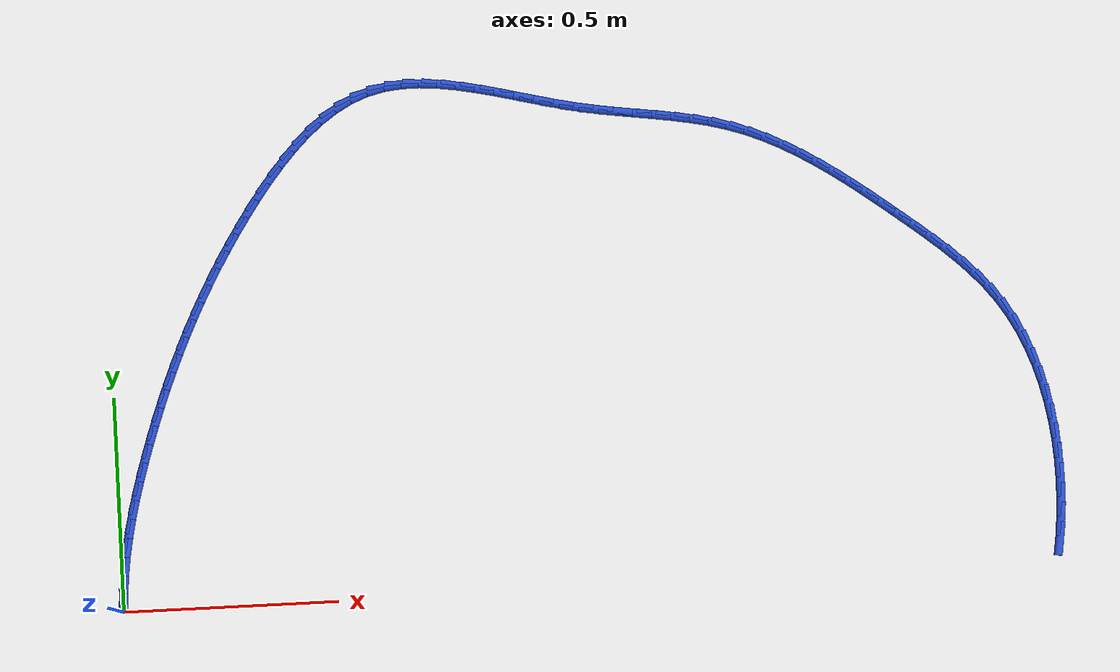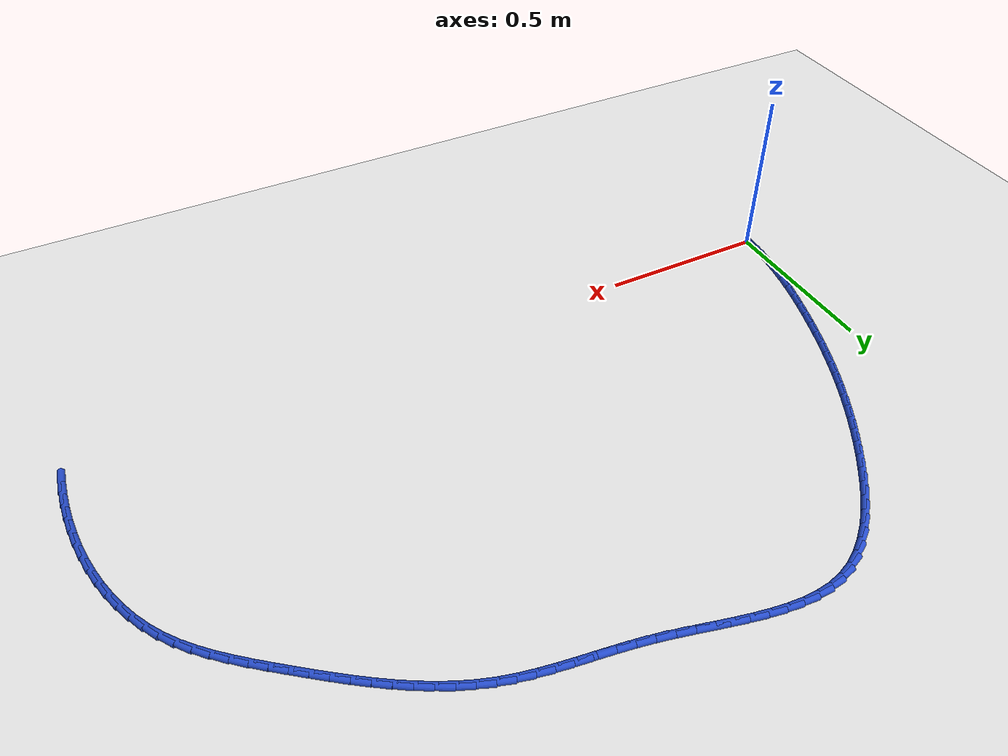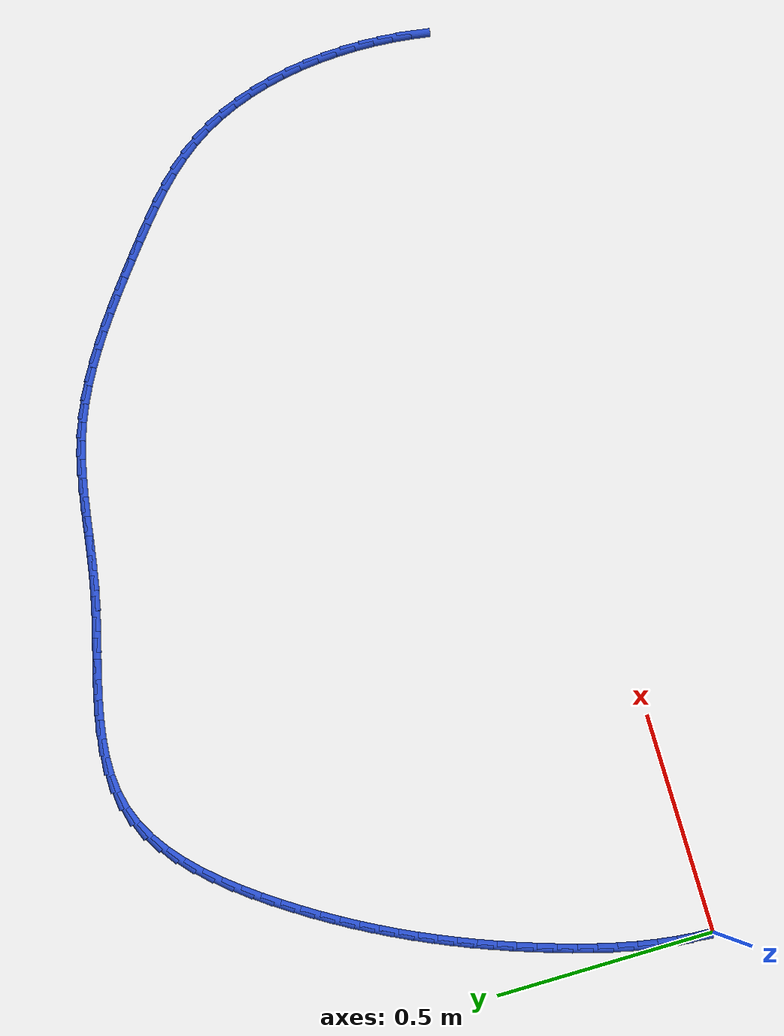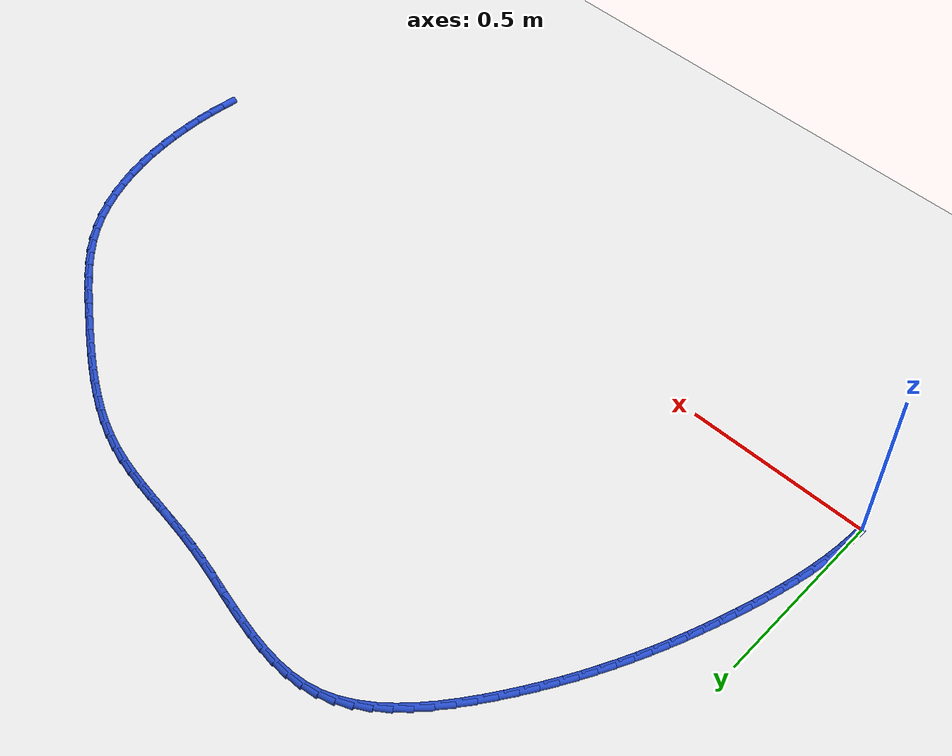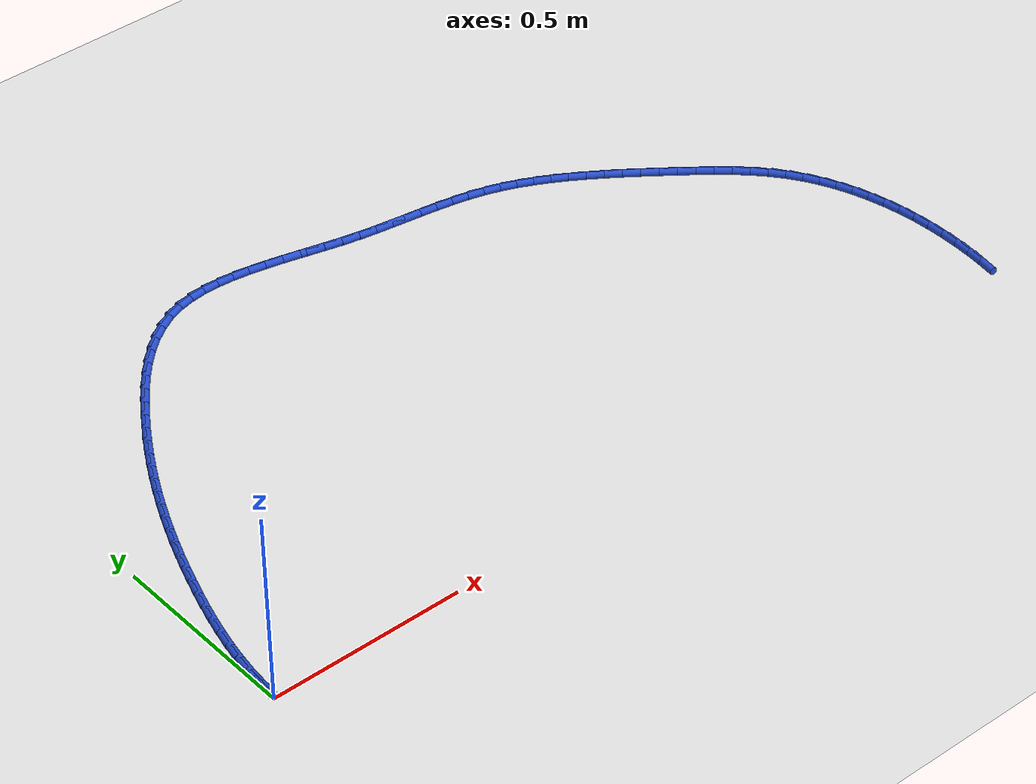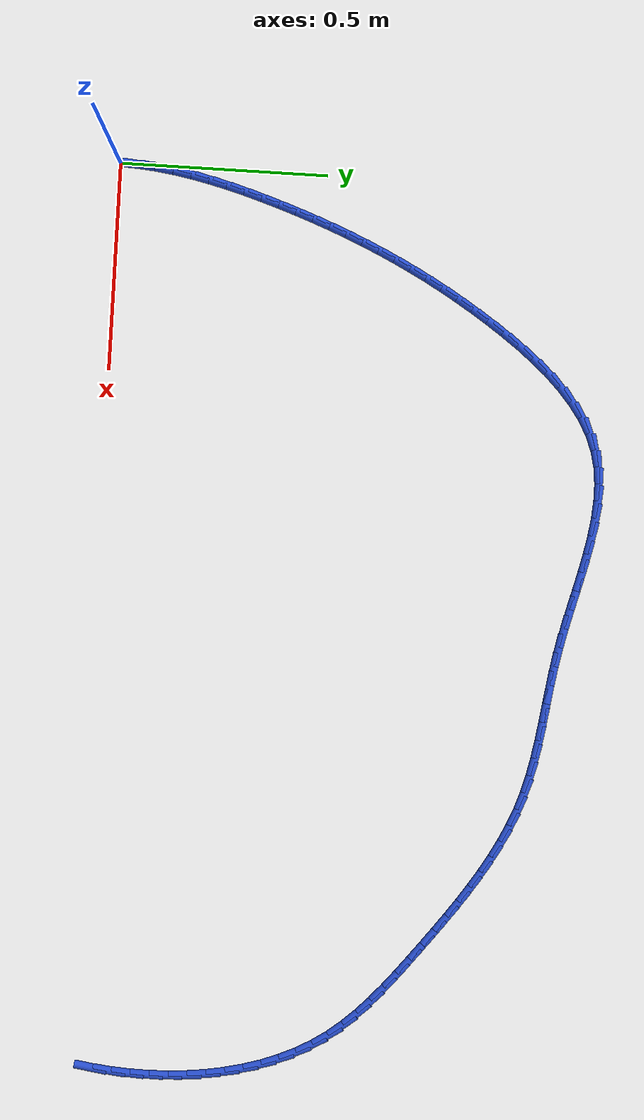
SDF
<sdf version="1.6">
 <world name="default">
  <model name="ground_plane">
   <static>1</static>
   <link name="link">
    <collision name="collision">
     <geometry><plane><normal>0 0 1</normal><size>100 100</size></plane></geometry>
     <surface><friction><ode><mu>100</mu><mu2>50</mu2></ode></friction></surface>
    </collision>
    <visual name="visual">
     <cast_shadows>0</cast_shadows>
     <geometry><plane><normal>0 0 1</normal><size>100 100</size></plane></geometry>
     <material>
      <script><uri>file://media/materials/scripts/gazebo.material</uri><name>Gazebo/WhiteGlow</name></script>
     </material>
    </visual>
   </link>
  </model>
  <model name="line">
   <link name="link_1">
    <pose>0.001998602274265983 0.044329892466661275 0.01 0 1.57 1.4766051293833917</pose>
    <collision name="collision">
     <geometry><cylinder><radius>0.01</radius><length>0.08</length></cylinder></geometry>
    </collision>
    <visual name="visual">
     <material>
      <script><name>Gazebo/Blue</name><uri>file://media/materials/scripts/gazebo.material</uri></script>
     </material>
     <geometry><cylinder><radius>0.01</radius><length>0.08</length></cylinder></geometry>
    </visual>
   </link>
   <link name="link_2">
    <pose>0.006178565530487486 0.08857600605293878 0.01 0 1.57 1.4321764024368413</pose>
    <collision name="collision">
     <geometry><cylinder><radius>0.01</radius><length>0.08</length></cylinder></geometry>
    </collision>
    <visual name="visual">
     <material>
      <script><name>Gazebo/Blue</name><uri>file://media/materials/scripts/gazebo.material</uri></script>
     </material>
     <geometry><cylinder><radius>0.01</radius><length>0.08</length></cylinder></geometry>
    </visual>
   </link>
   <link name="link_3">
    <pose>0.012333009224333929 0.1326892381688568 0.01 0 1.57 1.3923854912597395</pose>
    <collision name="collision">
     <geometry><cylinder><radius>0.01</radius><length>0.08</length></cylinder></geometry>
    </collision>
    <visual name="visual">
     <material>
      <script><name>Gazebo/Blue</name><uri>file://media/materials/scripts/gazebo.material</uri></script>
     </material>
     <geometry><cylinder><radius>0.01</radius><length>0.08</length></cylinder></geometry>
    </visual>
   </link>
   <link name="link_4">
    <pose>0.02025505281147469 0.17662048622443965 0.01 0 1.57 1.357113080629409</pose>
    <collision name="collision">
     <geometry><cylinder><radius>0.01</radius><length>0.08</length></cylinder></geometry>
    </collision>
    <visual name="visual">
     <material>
      <script><name>Gazebo/Blue</name><uri>file://media/materials/scripts/gazebo.material</uri></script>
     </material>
     <geometry><cylinder><radius>0.01</radius><length>0.08</length></cylinder></geometry>
    </visual>
   </link>
   <link name="link_5">
    <pose>0.029737815747579173 0.22032064762971162 0.01 0 1.57 1.3262163553945956</pose>
    <collision name="collision">
     <geometry><cylinder><radius>0.01</radius><length>0.08</length></cylinder></geometry>
    </collision>
    <visual name="visual">
     <material>
      <script><name>Gazebo/Blue</name><uri>file://media/materials/scripts/gazebo.material</uri></script>
     </material>
     <geometry><cylinder><radius>0.01</radius><length>0.08</length></cylinder></geometry>
    </visual>
   </link>
   <link name="link_6">
    <pose>0.04057441748831677 0.2637406197946971 0.01 0 1.57 1.2995494605103628</pose>
    <collision name="collision">
     <geometry><cylinder><radius>0.01</radius><length>0.08</length></cylinder></geometry>
    </collision>
    <visual name="visual">
     <material>
      <script><name>Gazebo/Blue</name><uri>file://media/materials/scripts/gazebo.material</uri></script>
     </material>
     <geometry><cylinder><radius>0.01</radius><length>0.08</length></cylinder></geometry>
    </visual>
   </link>
   <link name="link_7">
    <pose>0.052557977489356845 0.30683130012942017 0.01 0 1.57 1.2769795149681797</pose>
    <collision name="collision">
     <geometry><cylinder><radius>0.01</radius><length>0.08</length></cylinder></geometry>
    </collision>
    <visual name="visual">
     <material>
      <script><name>Gazebo/Blue</name><uri>file://media/materials/scripts/gazebo.material</uri></script>
     </material>
     <geometry><cylinder><radius>0.01</radius><length>0.08</length></cylinder></geometry>
    </visual>
   </link>
   <link name="link_8">
    <pose>0.06548161520636885 0.3495435860439053 0.01 0 1.57 1.2583904293031734</pose>
    <collision name="collision">
     <geometry><cylinder><radius>0.01</radius><length>0.08</length></cylinder></geometry>
    </collision>
    <visual name="visual">
     <material>
      <script><name>Gazebo/Blue</name><uri>file://media/materials/scripts/gazebo.material</uri></script>
     </material>
     <geometry><cylinder><radius>0.01</radius><length>0.08</length></cylinder></geometry>
    </visual>
   </link>
   <link name="link_9">
    <pose>0.07913889944182109 0.3918285140394076 0.01 0 1.57 1.242228044069068</pose>
    <collision name="collision">
     <geometry><cylinder><radius>0.01</radius><length>0.08</length></cylinder></geometry>
    </collision>
    <visual name="visual">
     <material>
      <script><name>Gazebo/Blue</name><uri>file://media/materials/scripts/gazebo.material</uri></script>
     </material>
     <geometry><cylinder><radius>0.01</radius><length>0.08</length></cylinder></geometry>
    </visual>
   </link>
   <link name="link_10">
    <pose>0.09340069594287631 0.4336610471861761 0.01 0 1.57 1.2253391697142682</pose>
    <collision name="collision">
     <geometry><cylinder><radius>0.01</radius><length>0.08</length></cylinder></geometry>
    </collision>
    <visual name="visual">
     <material>
      <script><name>Gazebo/Blue</name><uri>file://media/materials/scripts/gazebo.material</uri></script>
     </material>
     <geometry><cylinder><radius>0.01</radius><length>0.08</length></cylinder></geometry>
    </visual>
   </link>
   <link name="link_11">
    <pose>0.10830224629352811 0.4750670296056615 0.01 0 1.57 1.2073701015631189</pose>
    <collision name="collision">
     <geometry><cylinder><radius>0.01</radius><length>0.08</length></cylinder></geometry>
    </collision>
    <visual name="visual">
     <material>
      <script><name>Gazebo/Blue</name><uri>file://media/materials/scripts/gazebo.material</uri></script>
     </material>
     <geometry><cylinder><radius>0.01</radius><length>0.08</length></cylinder></geometry>
    </visual>
   </link>
   <link name="link_12">
    <pose>0.12389983198406262 0.5160788181317066 0.01 0 1.57 1.1883844190177797</pose>
    <collision name="collision">
     <geometry><cylinder><radius>0.01</radius><length>0.08</length></cylinder></geometry>
    </collision>
    <visual name="visual">
     <material>
      <script><name>Gazebo/Blue</name><uri>file://media/materials/scripts/gazebo.material</uri></script>
     </material>
     <geometry><cylinder><radius>0.01</radius><length>0.08</length></cylinder></geometry>
    </visual>
   </link>
   <link name="link_13">
    <pose>0.14024973450476586 0.5567287695981534 0.01 0 1.57 1.1684573064323895</pose>
    <collision name="collision">
     <geometry><cylinder><radius>0.01</radius><length>0.08</length></cylinder></geometry>
    </collision>
    <visual name="visual">
     <material>
      <script><name>Gazebo/Blue</name><uri>file://media/materials/scripts/gazebo.material</uri></script>
     </material>
     <geometry><cylinder><radius>0.01</radius><length>0.08</length></cylinder></geometry>
    </visual>
   </link>
   <link name="link_14">
    <pose>0.15740823534592413 0.5970492408388449 0.01 0 1.57 1.1476749357797125</pose>
    <collision name="collision">
     <geometry><cylinder><radius>0.01</radius><length>0.08</length></cylinder></geometry>
    </collision>
    <visual name="visual">
     <material>
      <script><name>Gazebo/Blue</name><uri>file://media/materials/scripts/gazebo.material</uri></script>
     </material>
     <geometry><cylinder><radius>0.01</radius><length>0.08</length></cylinder></geometry>
    </visual>
   </link>
   <link name="link_15">
    <pose>0.17543161599782336 0.6370725886876232 0.01 0 1.57 1.1261334874155562</pose>
    <collision name="collision">
     <geometry><cylinder><radius>0.01</radius><length>0.08</length></cylinder></geometry>
    </collision>
    <visual name="visual">
     <material>
      <script><name>Gazebo/Blue</name><uri>file://media/materials/scripts/gazebo.material</uri></script>
     </material>
     <geometry><cylinder><radius>0.01</radius><length>0.08</length></cylinder></geometry>
    </visual>
   </link>
   <link name="link_16">
    <pose>0.19437615795074986 0.676831169978331 0.01 0 1.57 1.1039378161728166</pose>
    <collision name="collision">
     <geometry><cylinder><radius>0.01</radius><length>0.08</length></cylinder></geometry>
    </collision>
    <visual name="visual">
     <material>
      <script><name>Gazebo/Blue</name><uri>file://media/materials/scripts/gazebo.material</uri></script>
     </material>
     <geometry><cylinder><radius>0.01</radius><length>0.08</length></cylinder></geometry>
    </visual>
   </link>
   <link name="link_17">
    <pose>0.2142981426949896 0.7163573415448106 0.01 0 1.57 1.0811997932761765</pose>
    <collision name="collision">
     <geometry><cylinder><radius>0.01</radius><length>0.08</length></cylinder></geometry>
    </collision>
    <visual name="visual">
     <material>
      <script><name>Gazebo/Blue</name><uri>file://media/materials/scripts/gazebo.material</uri></script>
     </material>
     <geometry><cylinder><radius>0.01</radius><length>0.08</length></cylinder></geometry>
    </visual>
   </link>
   <link name="link_18">
    <pose>0.23525385172082863 0.7556834602209042 0.01 0 1.57 1.0580363778686888</pose>
    <collision name="collision">
     <geometry><cylinder><radius>0.01</radius><length>0.08</length></cylinder></geometry>
    </collision>
    <visual name="visual">
     <material>
      <script><name>Gazebo/Blue</name><uri>file://media/materials/scripts/gazebo.material</uri></script>
     </material>
     <geometry><cylinder><radius>0.01</radius><length>0.08</length></cylinder></geometry>
    </visual>
   </link>
   <link name="link_19">
    <pose>0.25729956651855335 0.7948418828404546 0.01 0 1.57 1.0345674927137507</pose>
    <collision name="collision">
     <geometry><cylinder><radius>0.01</radius><length>0.08</length></cylinder></geometry>
    </collision>
    <visual name="visual">
     <material>
      <script><name>Gazebo/Blue</name><uri>file://media/materials/scripts/gazebo.material</uri></script>
     </material>
     <geometry><cylinder><radius>0.01</radius><length>0.08</length></cylinder></geometry>
    </visual>
   </link>
   <link name="link_20">
    <pose>0.2804915685784496 0.8338649662373044 0.01 0 1.57 1.010913794378061</pose>
    <collision name="collision">
     <geometry><cylinder><radius>0.01</radius><length>0.08</length></cylinder></geometry>
    </collision>
    <visual name="visual">
     <material>
      <script><name>Gazebo/Blue</name><uri>file://media/materials/scripts/gazebo.material</uri></script>
     </material>
     <geometry><cylinder><radius>0.01</radius><length>0.08</length></cylinder></geometry>
    </visual>
   </link>
   <link name="link_21">
    <pose>0.3048861393908036 0.8727850672452957 0.01 0 1.57 0.9871944369028652</pose>
    <collision name="collision">
     <geometry><cylinder><radius>0.01</radius><length>0.08</length></cylinder></geometry>
    </collision>
    <visual name="visual">
     <material>
      <script><name>Gazebo/Blue</name><uri>file://media/materials/scripts/gazebo.material</uri></script>
     </material>
     <geometry><cylinder><radius>0.01</radius><length>0.08</length></cylinder></geometry>
    </visual>
   </link>
   <link name="link_22">
    <pose>0.3305395604459015 0.9116345426982708 0.01 0 1.57 0.9626043464974331</pose>
    <collision name="collision">
     <geometry><cylinder><radius>0.01</radius><length>0.08</length></cylinder></geometry>
    </collision>
    <visual name="visual">
     <material>
      <script><name>Gazebo/Blue</name><uri>file://media/materials/scripts/gazebo.material</uri></script>
     </material>
     <geometry><cylinder><radius>0.01</radius><length>0.08</length></cylinder></geometry>
    </visual>
   </link>
   <link name="link_23">
    <pose>0.3575045991326749 0.9503645577361717 0.01 0 1.57 0.931849075076979</pose>
    <collision name="collision">
     <geometry><cylinder><radius>0.01</radius><length>0.08</length></cylinder></geometry>
    </collision>
    <visual name="visual">
     <material>
      <script><name>Gazebo/Blue</name><uri>file://media/materials/scripts/gazebo.material</uri></script>
     </material>
     <geometry><cylinder><radius>0.01</radius><length>0.08</length></cylinder></geometry>
    </visual>
   </link>
   <link name="link_24">
    <pose>0.3858143244419218 0.9884711550792101 0.01 0 1.57 0.8923563930588253</pose>
    <collision name="collision">
     <geometry><cylinder><radius>0.01</radius><length>0.08</length></cylinder></geometry>
    </collision>
    <visual name="visual">
     <material>
      <script><name>Gazebo/Blue</name><uri>file://media/materials/scripts/gazebo.material</uri></script>
     </material>
     <geometry><cylinder><radius>0.01</radius><length>0.08</length></cylinder></geometry>
    </visual>
   </link>
   <link name="link_25">
    <pose>0.41549494590378233 1.0252918927672048 0.01 0 1.57 0.8428716413968468</pose>
    <collision name="collision">
     <geometry><cylinder><radius>0.01</radius><length>0.08</length></cylinder></geometry>
    </collision>
    <visual name="visual">
     <material>
      <script><name>Gazebo/Blue</name><uri>file://media/materials/scripts/gazebo.material</uri></script>
     </material>
     <geometry><cylinder><radius>0.01</radius><length>0.08</length></cylinder></geometry>
    </visual>
   </link>
   <link name="link_26">
    <pose>0.44657266606478274 1.0601641674867792 0.01 0 1.57 0.781695204537575</pose>
    <collision name="collision">
     <geometry><cylinder><radius>0.01</radius><length>0.08</length></cylinder></geometry>
    </collision>
    <visual name="visual">
     <material>
      <script><name>Gazebo/Blue</name><uri>file://media/materials/scripts/gazebo.material</uri></script>
     </material>
     <geometry><cylinder><radius>0.01</radius><length>0.08</length></cylinder></geometry>
    </visual>
   </link>
   <link name="link_27">
    <pose>0.47907368747144935 1.0924253759245597 0.01 0 1.57 0.7067059154107361</pose>
    <collision name="collision">
     <geometry><cylinder><radius>0.01</radius><length>0.08</length></cylinder></geometry>
    </collision>
    <visual name="visual">
     <material>
      <script><name>Gazebo/Blue</name><uri>file://media/materials/scripts/gazebo.material</uri></script>
     </material>
     <geometry><cylinder><radius>0.01</radius><length>0.08</length></cylinder></geometry>
    </visual>
   </link>
   <link name="link_28">
    <pose>0.5130242126703075 1.1214129147671688 0.01 0 1.57 0.6155011121087374</pose>
    <collision name="collision">
     <geometry><cylinder><radius>0.01</radius><length>0.08</length></cylinder></geometry>
    </collision>
    <visual name="visual">
     <material>
      <script><name>Gazebo/Blue</name><uri>file://media/materials/scripts/gazebo.material</uri></script>
     </material>
     <geometry><cylinder><radius>0.01</radius><length>0.08</length></cylinder></geometry>
    </visual>
   </link>
   <link name="link_29">
    <pose>0.5484504442078836 1.1464641807012315 0.01 0 1.57 0.505788853088822</pose>
    <collision name="collision">
     <geometry><cylinder><radius>0.01</radius><length>0.08</length></cylinder></geometry>
    </collision>
    <visual name="visual">
     <material>
      <script><name>Gazebo/Blue</name><uri>file://media/materials/scripts/gazebo.material</uri></script>
     </material>
     <geometry><cylinder><radius>0.01</radius><length>0.08</length></cylinder></geometry>
    </visual>
   </link>
   <link name="link_30">
    <pose>0.5853785846307036 1.1669165704133728 0.01 0 1.57 0.37621961756253836</pose>
    <collision name="collision">
     <geometry><cylinder><radius>0.01</radius><length>0.08</length></cylinder></geometry>
    </collision>
    <visual name="visual">
     <material>
      <script><name>Gazebo/Blue</name><uri>file://media/materials/scripts/gazebo.material</uri></script>
     </material>
     <geometry><cylinder><radius>0.01</radius><length>0.08</length></cylinder></geometry>
    </visual>
   </link>
   <link name="link_31">
    <pose>0.6238347421534952 1.1821081309257753 0.01 0 1.57 0.2358012511669368</pose>
    <collision name="collision">
     <geometry><cylinder><radius>0.01</radius><length>0.08</length></cylinder></geometry>
    </collision>
    <visual name="visual">
     <material>
      <script><name>Gazebo/Blue</name><uri>file://media/materials/scripts/gazebo.material</uri></script>
     </material>
     <geometry><cylinder><radius>0.01</radius><length>0.08</length></cylinder></geometry>
    </visual>
   </link>
   <link name="link_32">
    <pose>0.6637967330143256 1.191709840362082 0.01 0 1.57 0.10985685038646974</pose>
    <collision name="collision">
     <geometry><cylinder><radius>0.01</radius><length>0.08</length></cylinder></geometry>
    </collision>
    <visual name="visual">
     <material>
      <script><name>Gazebo/Blue</name><uri>file://media/materials/scripts/gazebo.material</uri></script>
     </material>
     <geometry><cylinder><radius>0.01</radius><length>0.08</length></cylinder></geometry>
    </visual>
   </link>
   <link name="link_33">
    <pose>0.7051155028430259 1.1962673391452363 0.01 0 1.57 0.00472501650289219</pose>
    <collision name="collision">
     <geometry><cylinder><radius>0.01</radius><length>0.08</length></cylinder></geometry>
    </collision>
    <visual name="visual">
     <material>
      <script><name>Gazebo/Blue</name><uri>file://media/materials/scripts/gazebo.material</uri></script>
     </material>
     <geometry><cylinder><radius>0.01</radius><length>0.08</length></cylinder></geometry>
    </visual>
   </link>
   <link name="link_34">
    <pose>0.7476214124975399 1.1964681817644827 0.01 0 1.57 -0.07951917519916012</pose>
    <collision name="collision">
     <geometry><cylinder><radius>0.01</radius><length>0.08</length></cylinder></geometry>
    </collision>
    <visual name="visual">
     <material>
      <script><name>Gazebo/Blue</name><uri>file://media/materials/scripts/gazebo.material</uri></script>
     </material>
     <geometry><cylinder><radius>0.01</radius><length>0.08</length></cylinder></geometry>
    </visual>
   </link>
   <link name="link_35">
    <pose>0.7911448228358118 1.1929999227090675 0.01 0 1.57 -0.14434894992813124</pose>
    <collision name="collision">
     <geometry><cylinder><radius>0.01</radius><length>0.08</length></cylinder></geometry>
    </collision>
    <visual name="visual">
     <material>
      <script><name>Gazebo/Blue</name><uri>file://media/materials/scripts/gazebo.material</uri></script>
     </material>
     <geometry><cylinder><radius>0.01</radius><length>0.08</length></cylinder></geometry>
    </visual>
   </link>
   <link name="link_36">
    <pose>0.8355160947157856 1.1865501164682357 0.01 0 1.57 -0.19170951329857033</pose>
    <collision name="collision">
     <geometry><cylinder><radius>0.01</radius><length>0.08</length></cylinder></geometry>
    </collision>
    <visual name="visual">
     <material>
      <script><name>Gazebo/Blue</name><uri>file://media/materials/scripts/gazebo.material</uri></script>
     </material>
     <geometry><cylinder><radius>0.01</radius><length>0.08</length></cylinder></geometry>
    </visual>
   </link>
   <link name="link_37">
    <pose>0.8805655889954055 1.177806317531233 0.01 0 1.57 -0.22339579641115231</pose>
    <collision name="collision">
     <geometry><cylinder><radius>0.01</radius><length>0.08</length></cylinder></geometry>
    </collision>
    <visual name="visual">
     <material>
      <script><name>Gazebo/Blue</name><uri>file://media/materials/scripts/gazebo.material</uri></script>
     </material>
     <geometry><cylinder><radius>0.01</radius><length>0.08</length></cylinder></geometry>
    </visual>
   </link>
   <link name="link_38">
    <pose>0.9261236665326155 1.1674560803873049 0.01 0 1.57 -0.2407677162134794</pose>
    <collision name="collision">
     <geometry><cylinder><radius>0.01</radius><length>0.08</length></cylinder></geometry>
    </collision>
    <visual name="visual">
     <material>
      <script><name>Gazebo/Blue</name><uri>file://media/materials/scripts/gazebo.material</uri></script>
     </material>
     <geometry><cylinder><radius>0.01</radius><length>0.08</length></cylinder></geometry>
    </visual>
   </link>
   <link name="link_39">
    <pose>0.9720206881853597 1.1561869595256966 0.01 0 1.57 -0.24464905357289662</pose>
    <collision name="collision">
     <geometry><cylinder><radius>0.01</radius><length>0.08</length></cylinder></geometry>
    </collision>
    <visual name="visual">
     <material>
      <script><name>Gazebo/Blue</name><uri>file://media/materials/scripts/gazebo.material</uri></script>
     </material>
     <geometry><cylinder><radius>0.01</radius><length>0.08</length></cylinder></geometry>
    </visual>
   </link>
   <link name="link_40">
    <pose>1.0180870148115813 1.1446865094356538 0.01 0 1.57 -0.23530659465012307</pose>
    <collision name="collision">
     <geometry><cylinder><radius>0.01</radius><length>0.08</length></cylinder></geometry>
    </collision>
    <visual name="visual">
     <material>
      <script><name>Gazebo/Blue</name><uri>file://media/materials/scripts/gazebo.material</uri></script>
     </material>
     <geometry><cylinder><radius>0.01</radius><length>0.08</length></cylinder></geometry>
    </visual>
   </link>
   <link name="link_41">
    <pose>1.064153007269226 1.1336422846064225 0.01 0 1.57 -0.2124591660073173</pose>
    <collision name="collision">
     <geometry><cylinder><radius>0.01</radius><length>0.08</length></cylinder></geometry>
    </collision>
    <visual name="visual">
     <material>
      <script><name>Gazebo/Blue</name><uri>file://media/materials/scripts/gazebo.material</uri></script>
     </material>
     <geometry><cylinder><radius>0.01</radius><length>0.08</length></cylinder></geometry>
    </visual>
   </link>
   <link name="link_42">
    <pose>1.110049026429621 1.123741839382333 0.01 0 1.57 -0.17975986718861003</pose>
    <collision name="collision">
     <geometry><cylinder><radius>0.01</radius><length>0.08</length></cylinder></geometry>
    </collision>
    <visual name="visual">
     <material>
      <script><name>Gazebo/Blue</name><uri>file://media/materials/scripts/gazebo.material</uri></script>
     </material>
     <geometry><cylinder><radius>0.01</radius><length>0.08</length></cylinder></geometry>
    </visual>
   </link>
   <link name="link_43">
    <pose>1.1556251099051444 1.1154596871540714 0.01 0 1.57 -0.15411755822495865</pose>
    <collision name="collision">
     <geometry><cylinder><radius>0.01</radius><length>0.08</length></cylinder></geometry>
    </collision>
    <visual name="visual">
     <material>
      <script><name>Gazebo/Blue</name><uri>file://media/materials/scripts/gazebo.material</uri></script>
     </material>
     <geometry><cylinder><radius>0.01</radius><length>0.08</length></cylinder></geometry>
    </visual>
   </link>
   <link name="link_44">
    <pose>1.2008079350905554 1.108440558967568 0.01 0 1.57 -0.14020257719143167</pose>
    <collision name="collision">
     <geometry><cylinder><radius>0.01</radius><length>0.08</length></cylinder></geometry>
    </collision>
    <visual name="visual">
     <material>
      <script><name>Gazebo/Blue</name><uri>file://media/materials/scripts/gazebo.material</uri></script>
     </material>
     <geometry><cylinder><radius>0.01</radius><length>0.08</length></cylinder></geometry>
    </visual>
   </link>
   <link name="link_45">
    <pose>1.2455428360337866 1.102127189452048 0.01 0 1.57 -0.13848285699634744</pose>
    <collision name="collision">
     <geometry><cylinder><radius>0.01</radius><length>0.08</length></cylinder></geometry>
    </collision>
    <visual name="visual">
     <material>
      <script><name>Gazebo/Blue</name><uri>file://media/materials/scripts/gazebo.material</uri></script>
     </material>
     <geometry><cylinder><radius>0.01</radius><length>0.08</length></cylinder></geometry>
    </visual>
   </link>
   <link name="link_46">
    <pose>1.289775146782773 1.0959623132367367 0.01 0 1.57 -0.1493912808206171</pose>
    <collision name="collision">
     <geometry><cylinder><radius>0.01</radius><length>0.08</length></cylinder></geometry>
    </collision>
    <visual name="visual">
     <material>
      <script><name>Gazebo/Blue</name><uri>file://media/materials/scripts/gazebo.material</uri></script>
     </material>
     <geometry><cylinder><radius>0.01</radius><length>0.08</length></cylinder></geometry>
    </visual>
   </link>
   <link name="link_47">
    <pose>1.3334502013854475 1.0893886649508593 0.01 0 1.57 -0.17332762516594027</pose>
    <collision name="collision">
     <geometry><cylinder><radius>0.01</radius><length>0.08</length></cylinder></geometry>
    </collision>
    <visual name="visual">
     <material>
      <script><name>Gazebo/Blue</name><uri>file://media/materials/scripts/gazebo.material</uri></script>
     </material>
     <geometry><cylinder><radius>0.01</radius><length>0.08</length></cylinder></geometry>
    </visual>
   </link>
   <link name="link_48">
    <pose>1.3765133338897453 1.0818489792236414 0.01 0 1.57 -0.21059748392331867</pose>
    <collision name="collision">
     <geometry><cylinder><radius>0.01</radius><length>0.08</length></cylinder></geometry>
    </collision>
    <visual name="visual">
     <material>
      <script><name>Gazebo/Blue</name><uri>file://media/materials/scripts/gazebo.material</uri></script>
     </material>
     <geometry><cylinder><radius>0.01</radius><length>0.08</length></cylinder></geometry>
    </visual>
   </link>
   <link name="link_49">
    <pose>1.4189098783435994 1.0727859906843082 0.01 0 1.57 -0.26127759936198397</pose>
    <collision name="collision">
     <geometry><cylinder><radius>0.01</radius><length>0.08</length></cylinder></geometry>
    </collision>
    <visual name="visual">
     <material>
      <script><name>Gazebo/Blue</name><uri>file://media/materials/scripts/gazebo.material</uri></script>
     </material>
     <geometry><cylinder><radius>0.01</radius><length>0.08</length></cylinder></geometry>
    </visual>
   </link>
   <link name="link_50">
    <pose>1.4605851687949447 1.0616424339620856 0.01 0 1.57 -0.32421507294622276</pose>
    <collision name="collision">
     <geometry><cylinder><radius>0.01</radius><length>0.08</length></cylinder></geometry>
    </collision>
    <visual name="visual">
     <material>
      <script><name>Gazebo/Blue</name><uri>file://media/materials/scripts/gazebo.material</uri></script>
     </material>
     <geometry><cylinder><radius>0.01</radius><length>0.08</length></cylinder></geometry>
    </visual>
   </link>
   <link name="link_51">
    <pose>1.5014892418000167 1.047895640811184 0.01 0 1.57 -0.3880398437940959</pose>
    <collision name="collision">
     <geometry><cylinder><radius>0.01</radius><length>0.08</length></cylinder></geometry>
    </collision>
    <visual name="visual">
     <material>
      <script><name>Gazebo/Blue</name><uri>file://media/materials/scripts/gazebo.material</uri></script>
     </material>
     <geometry><cylinder><radius>0.01</radius><length>0.08</length></cylinder></geometry>
    </visual>
   </link>
   <link name="link_52">
    <pose>1.541634998041206 1.0314854446742712 0.01 0 1.57 -0.4448444985155367</pose>
    <collision name="collision">
     <geometry><cylinder><radius>0.01</radius><length>0.08</length></cylinder></geometry>
    </collision>
    <visual name="visual">
     <material>
      <script><name>Gazebo/Blue</name><uri>file://media/materials/scripts/gazebo.material</uri></script>
     </material>
     <geometry><cylinder><radius>0.01</radius><length>0.08</length></cylinder></geometry>
    </visual>
   </link>
   <link name="link_53">
    <pose>1.5810801612970582 1.012681449865274 0.01 0 1.57 -0.4944812647800226</pose>
    <collision name="collision">
     <geometry><cylinder><radius>0.01</radius><length>0.08</length></cylinder></geometry>
    </collision>
    <visual name="visual">
     <material>
      <script><name>Gazebo/Blue</name><uri>file://media/materials/scripts/gazebo.material</uri></script>
     </material>
     <geometry><cylinder><radius>0.01</radius><length>0.08</length></cylinder></geometry>
    </visual>
   </link>
   <link name="link_54">
    <pose>1.6198834197357146 0.9917603558705911 0.01 0 1.57 -0.5371322830194737</pose>
    <collision name="collision">
     <geometry><cylinder><radius>0.01</radius><length>0.08</length></cylinder></geometry>
    </collision>
    <visual name="visual">
     <material>
      <script><name>Gazebo/Blue</name><uri>file://media/materials/scripts/gazebo.material</uri></script>
     </material>
     <geometry><cylinder><radius>0.01</radius><length>0.08</length></cylinder></geometry>
    </visual>
   </link>
   <link name="link_55">
    <pose>1.658103461525318 0.96899886217662 0.01 0 1.57 -0.573069307996929</pose>
    <collision name="collision">
     <geometry><cylinder><radius>0.01</radius><length>0.08</length></cylinder></geometry>
    </collision>
    <visual name="visual">
     <material>
      <script><name>Gazebo/Blue</name><uri>file://media/materials/scripts/gazebo.material</uri></script>
     </material>
     <geometry><cylinder><radius>0.01</radius><length>0.08</length></cylinder></geometry>
    </visual>
   </link>
   <link name="link_56">
    <pose>1.695798974834011 0.9446736682697583 0.01 0 1.57 -0.6025936014822144</pose>
    <collision name="collision">
     <geometry><cylinder><radius>0.01</radius><length>0.08</length></cylinder></geometry>
    </collision>
    <visual name="visual">
     <material>
      <script><name>Gazebo/Blue</name><uri>file://media/materials/scripts/gazebo.material</uri></script>
     </material>
     <geometry><cylinder><radius>0.01</radius><length>0.08</length></cylinder></geometry>
    </visual>
   </link>
   <link name="link_57">
    <pose>1.7330286478299357 0.9190614736364052 0.01 0 1.57 -0.6259926779803051</pose>
    <collision name="collision">
     <geometry><cylinder><radius>0.01</radius><length>0.08</length></cylinder></geometry>
    </collision>
    <visual name="visual">
     <material>
      <script><name>Gazebo/Blue</name><uri>file://media/materials/scripts/gazebo.material</uri></script>
     </material>
     <geometry><cylinder><radius>0.01</radius><length>0.08</length></cylinder></geometry>
    </visual>
   </link>
   <link name="link_58">
    <pose>1.769851168681235 0.8924389777629576 0.01 0 1.57 -0.6435108466424923</pose>
    <collision name="collision">
     <geometry><cylinder><radius>0.01</radius><length>0.08</length></cylinder></geometry>
    </collision>
    <visual name="visual">
     <material>
      <script><name>Gazebo/Blue</name><uri>file://media/materials/scripts/gazebo.material</uri></script>
     </material>
     <geometry><cylinder><radius>0.01</radius><length>0.08</length></cylinder></geometry>
    </visual>
   </link>
   <link name="link_59">
    <pose>1.806325225556051 0.8650828801358146 0.01 0 1.57 -0.6553298244499957</pose>
    <collision name="collision">
     <geometry><cylinder><radius>0.01</radius><length>0.08</length></cylinder></geometry>
    </collision>
    <visual name="visual">
     <material>
      <script><name>Gazebo/Blue</name><uri>file://media/materials/scripts/gazebo.material</uri></script>
     </material>
     <geometry><cylinder><radius>0.01</radius><length>0.08</length></cylinder></geometry>
    </visual>
   </link>
   <link name="link_60">
    <pose>1.8425095066225263 0.8372698802413738 0.01 0 1.57 -0.6620347036509198</pose>
    <collision name="collision">
     <geometry><cylinder><radius>0.01</radius><length>0.08</length></cylinder></geometry>
    </collision>
    <visual name="visual">
     <material>
      <script><name>Gazebo/Blue</name><uri>file://media/materials/scripts/gazebo.material</uri></script>
     </material>
     <geometry><cylinder><radius>0.01</radius><length>0.08</length></cylinder></geometry>
    </visual>
   </link>
   <link name="link_61">
    <pose>1.8784491580475853 0.8092595812209517 0.01 0 1.57 -0.6724374659433364</pose>
    <collision name="collision">
     <geometry><cylinder><radius>0.01</radius><length>0.08</length></cylinder></geometry>
    </collision>
    <visual name="visual">
     <material>
      <script><name>Gazebo/Blue</name><uri>file://media/materials/scripts/gazebo.material</uri></script>
     </material>
     <geometry><cylinder><radius>0.01</radius><length>0.08</length></cylinder></geometry>
    </visual>
   </link>
   <link name="link_62">
    <pose>1.9139419016815755 0.7809992208992862 0.01 0 1.57 -0.6944023319127265</pose>
    <collision name="collision">
     <geometry><cylinder><radius>0.01</radius><length>0.08</length></cylinder></geometry>
    </collision>
    <visual name="visual">
     <material>
      <script><name>Gazebo/Blue</name><uri>file://media/materials/scripts/gazebo.material</uri></script>
     </material>
     <geometry><cylinder><radius>0.01</radius><length>0.08</length></cylinder></geometry>
    </visual>
   </link>
   <link name="link_63">
    <pose>1.9485691179694276 0.7521629129695494 0.01 0 1.57 -0.7285751931079465</pose>
    <collision name="collision">
     <geometry><cylinder><radius>0.01</radius><length>0.08</length></cylinder></geometry>
    </collision>
    <visual name="visual">
     <material>
      <script><name>Gazebo/Blue</name><uri>file://media/materials/scripts/gazebo.material</uri></script>
     </material>
     <geometry><cylinder><radius>0.01</radius><length>0.08</length></cylinder></geometry>
    </visual>
   </link>
   <link name="link_64">
    <pose>1.981904897079331 0.7224155673828034 0.01 0 1.57 -0.7754170256258487</pose>
    <collision name="collision">
     <geometry><cylinder><radius>0.01</radius><length>0.08</length></cylinder></geometry>
    </collision>
    <visual name="visual">
     <material>
      <script><name>Gazebo/Blue</name><uri>file://media/materials/scripts/gazebo.material</uri></script>
     </material>
     <geometry><cylinder><radius>0.01</radius><length>0.08</length></cylinder></geometry>
    </visual>
   </link>
   <link name="link_65">
    <pose>2.013523329179477 0.6914220940901102 0.01 0 1.57 -0.835308692647815</pose>
    <collision name="collision">
     <geometry><cylinder><radius>0.01</radius><length>0.08</length></cylinder></geometry>
    </collision>
    <visual name="visual">
     <material>
      <script><name>Gazebo/Blue</name><uri>file://media/materials/scripts/gazebo.material</uri></script>
     </material>
     <geometry><cylinder><radius>0.01</radius><length>0.08</length></cylinder></geometry>
    </visual>
   </link>
   <link name="link_66">
    <pose>2.0429985044380565 0.6588474030425313 0.01 0 1.57 -0.9083154257611132</pose>
    <collision name="collision">
     <geometry><cylinder><radius>0.01</radius><length>0.08</length></cylinder></geometry>
    </collision>
    <visual name="visual">
     <material>
      <script><name>Gazebo/Blue</name><uri>file://media/materials/scripts/gazebo.material</uri></script>
     </material>
     <geometry><cylinder><radius>0.01</radius><length>0.08</length></cylinder></geometry>
    </visual>
   </link>
   <link name="link_67">
    <pose>2.0699045130232587 0.6243564041911289 0.01 0 1.57 -0.9915361157523247</pose>
    <collision name="collision">
     <geometry><cylinder><radius>0.01</radius><length>0.08</length></cylinder></geometry>
    </collision>
    <visual name="visual">
     <material>
      <script><name>Gazebo/Blue</name><uri>file://media/materials/scripts/gazebo.material</uri></script>
     </material>
     <geometry><cylinder><radius>0.01</radius><length>0.08</length></cylinder></geometry>
    </visual>
   </link>
   <link name="link_68">
    <pose>2.093886207290143 0.5876934043130307 0.01 0 1.57 -1.0726686446524845</pose>
    <collision name="collision">
     <geometry><cylinder><radius>0.01</radius><length>0.08</length></cylinder></geometry>
    </collision>
    <visual name="visual">
     <material>
      <script><name>Gazebo/Blue</name><uri>file://media/materials/scripts/gazebo.material</uri></script>
     </material>
     <geometry><cylinder><radius>0.01</radius><length>0.08</length></cylinder></geometry>
    </visual>
   </link>
   <link name="link_69">
    <pose>2.114935080435692 0.548991649304567 0.01 0 1.57 -1.1480705612795197</pose>
    <collision name="collision">
     <geometry><cylinder><radius>0.01</radius><length>0.08</length></cylinder></geometry>
    </collision>
    <visual name="visual">
     <material>
      <script><name>Gazebo/Blue</name><uri>file://media/materials/scripts/gazebo.material</uri></script>
     </material>
     <geometry><cylinder><radius>0.01</radius><length>0.08</length></cylinder></geometry>
    </visual>
   </link>
   <link name="link_70">
    <pose>2.1331486015663956 0.5085032925072305 0.01 0 1.57 -1.217940256252661</pose>
    <collision name="collision">
     <geometry><cylinder><radius>0.01</radius><length>0.08</length></cylinder></geometry>
    </collision>
    <visual name="visual">
     <material>
      <script><name>Gazebo/Blue</name><uri>file://media/materials/scripts/gazebo.material</uri></script>
     </material>
     <geometry><cylinder><radius>0.01</radius><length>0.08</length></cylinder></geometry>
    </visual>
   </link>
   <link name="link_71">
    <pose>2.1486242664745983 0.4664805172046598 0.01 0 1.57 -1.28265193003333</pose>
    <collision name="collision">
     <geometry><cylinder><radius>0.01</radius><length>0.08</length></cylinder></geometry>
    </collision>
    <visual name="visual">
     <material>
      <script><name>Gazebo/Blue</name><uri>file://media/materials/scripts/gazebo.material</uri></script>
     </material>
     <geometry><cylinder><radius>0.01</radius><length>0.08</length></cylinder></geometry>
    </visual>
   </link>
   <link name="link_72">
    <pose>2.161459570952641 0.4231755066804945 0.01 0 1.57 -1.3426857418835236</pose>
    <collision name="collision">
     <geometry><cylinder><radius>0.01</radius><length>0.08</length></cylinder></geometry>
    </collision>
    <visual name="visual">
     <material>
      <script><name>Gazebo/Blue</name><uri>file://media/materials/scripts/gazebo.material</uri></script>
     </material>
     <geometry><cylinder><radius>0.01</radius><length>0.08</length></cylinder></geometry>
    </visual>
   </link>
   <link name="link_73">
    <pose>2.1717520107928663 0.37884044421837276 0.01 0 1.57 -1.3985765984955845</pose>
    <collision name="collision">
     <geometry><cylinder><radius>0.01</radius><length>0.08</length></cylinder></geometry>
    </collision>
    <visual name="visual">
     <material>
      <script><name>Gazebo/Blue</name><uri>file://media/materials/scripts/gazebo.material</uri></script>
     </material>
     <geometry><cylinder><radius>0.01</radius><length>0.08</length></cylinder></geometry>
    </visual>
   </link>
   <link name="link_74">
    <pose>2.1795990817876154 0.33372751310193394 0.01 0 1.57 -1.4508800426221542</pose>
    <collision name="collision">
     <geometry><cylinder><radius>0.01</radius><length>0.08</length></cylinder></geometry>
    </collision>
    <visual name="visual">
     <material>
      <script><name>Gazebo/Blue</name><uri>file://media/materials/scripts/gazebo.material</uri></script>
     </material>
     <geometry><cylinder><radius>0.01</radius><length>0.08</length></cylinder></geometry>
    </visual>
   </link>
   <link name="link_75">
    <pose>2.1850982797292318 0.28808889661481685 0.01 0 1.57 -1.5001523553809544</pose>
    <collision name="collision">
     <geometry><cylinder><radius>0.01</radius><length>0.08</length></cylinder></geometry>
    </collision>
    <visual name="visual">
     <material>
      <script><name>Gazebo/Blue</name><uri>file://media/materials/scripts/gazebo.material</uri></script>
     </material>
     <geometry><cylinder><radius>0.01</radius><length>0.08</length></cylinder></geometry>
    </visual>
   </link>
   <link name="link_76">
    <pose>2.1883471004100556 0.24217677804065954 0.01 0 1.57 -1.5469415624723986</pose>
    <collision name="collision">
     <geometry><cylinder><radius>0.01</radius><length>0.08</length></cylinder></geometry>
    </collision>
    <visual name="visual">
     <material>
      <script><name>Gazebo/Blue</name><uri>file://media/materials/scripts/gazebo.material</uri></script>
     </material>
     <geometry><cylinder><radius>0.01</radius><length>0.08</length></cylinder></geometry>
    </visual>
   </link>
   <link name="link_77">
    <pose>2.189443039622429 0.1962433406631018 0.01 0 1.57 1.5498061397692606</pose>
    <collision name="collision">
     <geometry><cylinder><radius>0.01</radius><length>0.08</length></cylinder></geometry>
    </collision>
    <visual name="visual">
     <material>
      <script><name>Gazebo/Blue</name><uri>file://media/materials/scripts/gazebo.material</uri></script>
     </material>
     <geometry><cylinder><radius>0.01</radius><length>0.08</length></cylinder></geometry>
    </visual>
   </link>
   <link name="link_78">
    <pose>2.188483593158755 0.1505407677649784 0.01 0 1.57 1.5065107761619543</pose>
    <collision name="collision">
     <geometry><cylinder><radius>0.01</radius><length>0.08</length></cylinder></geometry>
    </collision>
    <visual name="visual">
     <material>
      <script><name>Gazebo/Blue</name><uri>file://media/materials/scripts/gazebo.material</uri></script>
     </material>
     <geometry><cylinder><radius>0.01</radius><length>0.08</length></cylinder></geometry>
    </visual>
   </link>
   <link name="link_79">
    <pose>2.1855696616737297 0.10527528771269447 0.01 0 1.57 1.4650864999947142</pose>
    <collision name="collision">
     <geometry><cylinder><radius>0.01</radius><length>0.08</length></cylinder></geometry>
    </collision>
    <visual name="visual">
     <material>
      <script><name>Gazebo/Blue</name><uri>file://media/materials/scripts/gazebo.material</uri></script>
     </material>
     <geometry><cylinder><radius>0.01</radius><length>0.08</length></cylinder></geometry>
    </visual>
   </link>
   <link name="link_80">
    <pose>2.1808156593665586 0.06047073858650981 0.01 0 1.57 1.4258424098330205</pose>
    <collision name="collision">
     <geometry><cylinder><radius>0.01</radius><length>0.08</length></cylinder></geometry>
    </collision>
    <visual name="visual">
     <material>
      <script><name>Gazebo/Blue</name><uri>file://media/materials/scripts/gazebo.material</uri></script>
     </material>
     <geometry><cylinder><radius>0.01</radius><length>0.08</length></cylinder></geometry>
    </visual>
   </link>
   <link name="link_161">
    <pose>0.002045810167804068 0.04432594426740084 0.01 0 1.57 1.5246752703147328</pose>
    <collision name="collision">
     <geometry><cylinder><radius>0.01</radius><length>0.08</length></cylinder></geometry>
    </collision>
    <visual name="visual">
     <material>
      <script><name>Gazebo/Blue</name><uri>file://media/materials/scripts/gazebo.material</uri></script>
     </material>
     <geometry><cylinder><radius>0.01</radius><length>0.08</length></cylinder></geometry>
    </visual>
   </link>
  </model>
 </world>
</sdf>
